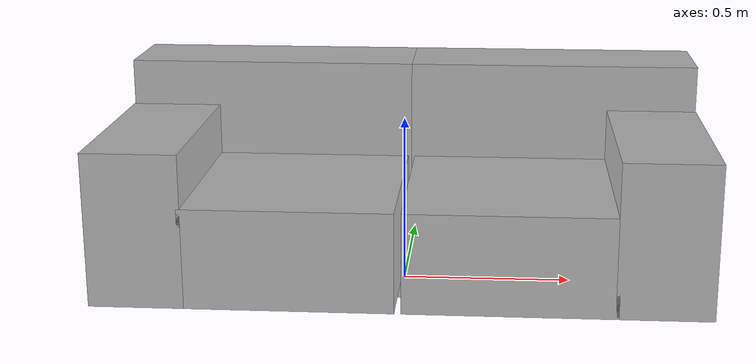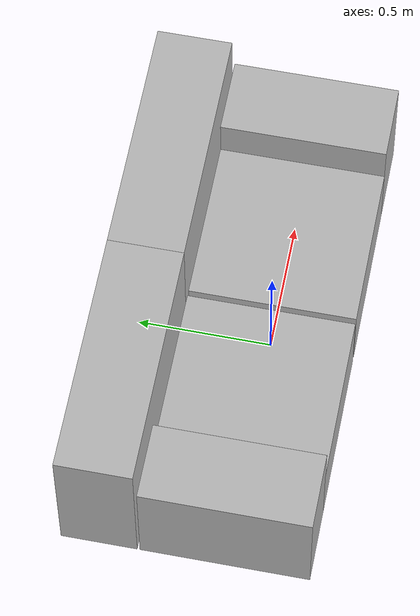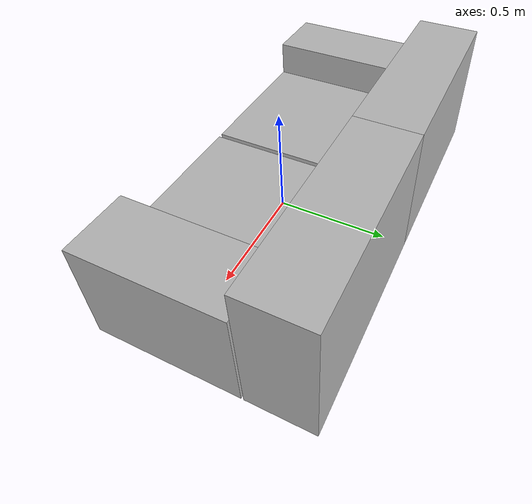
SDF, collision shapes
<?xml version='1.0'?>
<sdf version='1.6'>
  <model name='couch_1'>
    <link name='dummy_link'>
      <pose frame=''>0 0 0 0 -0 0</pose>
      <inertial>
        <pose frame=''>-0 0.131429 0.194286 0 -0 0</pose>
        <mass>35</mass>
        <inertia>
          <ixx>1.84429</ixx>
          <ixy>-5.8366e-17</ixy>
          <ixz>-8.62802e-17</ixz>
          <iyy>9.15786</iyy>
          <iyz>-0.486286</iyz>
          <izz>10.3364</izz>
        </inertia>
      </inertial>
      <self_collide>0</self_collide>
      <kinematic>0</kinematic>
      <velocity_decay/>
      <visual name='dummy_link_visual'>
        <pose frame=''>0 0 0 0 -0 0</pose>
        <geometry>
          <box>
            <size>0.01 0.01 0.01</size>
          </box>
        </geometry>
        <cast_shadows>1</cast_shadows>
        <transparency>0</transparency>
      </visual>
      <visual name='dummy_link_fixed_joint_lump__left_couch_back_visual_1'>
        <pose frame=''>-0.45 0.46 0.3 0 -0 0</pose>
        <geometry>
          <mesh>
            <scale>1 1 1</scale>
            <uri>/home/dede/workspaces/lucis/src/cob_simulation/cob_gazebo_objects/Media/materials/textures/couch_back.dae</uri>
          </mesh>
        </geometry>
        <cast_shadows>1</cast_shadows>
        <transparency>0</transparency>
      </visual>
      <visual name='dummy_link_fixed_joint_lump__left_couch_middle_visual_2'>
        <pose frame=''>-0.32 0 0.15 0 -0 0</pose>
        <geometry>
          <mesh>
            <scale>1 1 1</scale>
            <uri>/home/dede/workspaces/lucis/src/cob_simulation/cob_gazebo_objects/Media/materials/textures/couch_middle.dae</uri>
          </mesh>
        </geometry>
        <cast_shadows>1</cast_shadows>
        <transparency>0</transparency>
      </visual>
      <visual name='dummy_link_fixed_joint_lump__left_couch_side_visual_3'>
        <pose frame=''>-0.76 0 0.23 0 -0 0</pose>
        <geometry>
          <mesh>
            <scale>1 1 1</scale>
            <uri>/home/dede/workspaces/lucis/src/cob_simulation/cob_gazebo_objects/Media/materials/textures/couch_left_side.dae</uri>
          </mesh>
        </geometry>
        <cast_shadows>1</cast_shadows>
        <transparency>0</transparency>
      </visual>
      <visual name='dummy_link_fixed_joint_lump__right_couch_middle_visual_5'>
        <pose frame=''>0.32 0 0.15 0 -0 0</pose>
        <geometry>
          <mesh>
            <scale>1 1 1</scale>
            <uri>/home/dede/workspaces/lucis/src/cob_simulation/cob_gazebo_objects/Media/materials/textures/couch_middle.dae</uri>
          </mesh>
        </geometry>
        <cast_shadows>1</cast_shadows>
        <transparency>0</transparency>
      </visual>
      <visual name='dummy_link_fixed_joint_lump__right_couch_back_visual_4'>
        <pose frame=''>0.45 0.46 0.3 0 -0 0</pose>
        <geometry>
          <mesh>
            <scale>1 1 1</scale>
            <uri>/home/dede/workspaces/lucis/src/cob_simulation/cob_gazebo_objects/Media/materials/textures/couch_back.dae</uri>
          </mesh>
        </geometry>
        <cast_shadows>1</cast_shadows>
        <transparency>0</transparency>
      </visual>
      <visual name='dummy_link_fixed_joint_lump__right_couch_side_visual_6'>
        <pose frame=''>0.76 0 0.23 0 -0 0</pose>
        <geometry>
          <mesh>
            <scale>1 1 1</scale>
            <uri>/home/dede/workspaces/lucis/src/cob_simulation/cob_gazebo_objects/Media/materials/textures/couch_right_side.dae</uri>
          </mesh>
        </geometry>
        <cast_shadows>1</cast_shadows>
        <transparency>0</transparency>
      </visual>
      <collision name='dummy_link_fixed_joint_lump__right_couch_side_collision_6'>
        <laser_retro>0</laser_retro>
        <max_contacts>10</max_contacts>
        <pose frame=''>0.76 0 0.23 0 -0 0</pose>
        <geometry>
          <box>
            <size>0.28 0.62 0.46</size>
          </box>
        </geometry>
        <surface>
          <friction>
            <ode>
              <mu>1</mu>
              <mu2>1</mu2>
              <fdir1>0 0 0</fdir1>
              <slip1>0</slip1>
              <slip2>0</slip2>
            </ode>
            <torsional>
              <coefficient>1</coefficient>
              <patch_radius>0</patch_radius>
              <surface_radius>0</surface_radius>
              <use_patch_radius>1</use_patch_radius>
              <ode>
                <slip>0</slip>
              </ode>
            </torsional>
          </friction>
          <bounce>
            <restitution_coefficient>0</restitution_coefficient>
            <threshold>1e+06</threshold>
          </bounce>
          <contact>
            <collide_without_contact>0</collide_without_contact>
            <collide_without_contact_bitmask>1</collide_without_contact_bitmask>
            <collide_bitmask>1</collide_bitmask>
            <ode>
              <soft_cfm>0</soft_cfm>
              <soft_erp>0.2</soft_erp>
              <kp>1e+13</kp>
              <kd>1</kd>
              <max_vel>0.01</max_vel>
              <min_depth>0</min_depth>
            </ode>
            <bullet>
              <split_impulse>1</split_impulse>
              <split_impulse_penetration_threshold>-0.01</split_impulse_penetration_threshold>
              <soft_cfm>0</soft_cfm>
              <soft_erp>0.2</soft_erp>
              <kp>1e+13</kp>
              <kd>1</kd>
            </bullet>
          </contact>
        </surface>
      </collision>
      <collision name='dummy_link_fixed_joint_lump__right_couch_middle_collision_5'>
        <laser_retro>0</laser_retro>
        <max_contacts>10</max_contacts>
        <pose frame=''>0.32 0 0.15 0 -0 0</pose>
        <geometry>
          <box>
            <size>0.62 0.62 0.3</size>
          </box>
        </geometry>
        <surface>
          <friction>
            <ode>
              <mu>1</mu>
              <mu2>1</mu2>
              <fdir1>0 0 0</fdir1>
              <slip1>0</slip1>
              <slip2>0</slip2>
            </ode>
            <torsional>
              <coefficient>1</coefficient>
              <patch_radius>0</patch_radius>
              <surface_radius>0</surface_radius>
              <use_patch_radius>1</use_patch_radius>
              <ode>
                <slip>0</slip>
              </ode>
            </torsional>
          </friction>
          <bounce>
            <restitution_coefficient>0</restitution_coefficient>
            <threshold>1e+06</threshold>
          </bounce>
          <contact>
            <collide_without_contact>0</collide_without_contact>
            <collide_without_contact_bitmask>1</collide_without_contact_bitmask>
            <collide_bitmask>1</collide_bitmask>
            <ode>
              <soft_cfm>0</soft_cfm>
              <soft_erp>0.2</soft_erp>
              <kp>1e+13</kp>
              <kd>1</kd>
              <max_vel>0.01</max_vel>
              <min_depth>0</min_depth>
            </ode>
            <bullet>
              <split_impulse>1</split_impulse>
              <split_impulse_penetration_threshold>-0.01</split_impulse_penetration_threshold>
              <soft_cfm>0</soft_cfm>
              <soft_erp>0.2</soft_erp>
              <kp>1e+13</kp>
              <kd>1</kd>
            </bullet>
          </contact>
        </surface>
      </collision>
      <collision name='dummy_link_fixed_joint_lump__right_couch_back_collision_4'>
        <laser_retro>0</laser_retro>
        <max_contacts>10</max_contacts>
        <pose frame=''>0.45 0.46 0.3 0 -0 0</pose>
        <geometry>
          <box>
            <size>0.9 0.28 0.6</size>
          </box>
        </geometry>
        <surface>
          <friction>
            <ode>
              <mu>1</mu>
              <mu2>1</mu2>
              <fdir1>0 0 0</fdir1>
              <slip1>0</slip1>
              <slip2>0</slip2>
            </ode>
            <torsional>
              <coefficient>1</coefficient>
              <patch_radius>0</patch_radius>
              <surface_radius>0</surface_radius>
              <use_patch_radius>1</use_patch_radius>
              <ode>
                <slip>0</slip>
              </ode>
            </torsional>
          </friction>
          <bounce>
            <restitution_coefficient>0</restitution_coefficient>
            <threshold>1e+06</threshold>
          </bounce>
          <contact>
            <collide_without_contact>0</collide_without_contact>
            <collide_without_contact_bitmask>1</collide_without_contact_bitmask>
            <collide_bitmask>1</collide_bitmask>
            <ode>
              <soft_cfm>0</soft_cfm>
              <soft_erp>0.2</soft_erp>
              <kp>1e+13</kp>
              <kd>1</kd>
              <max_vel>0.01</max_vel>
              <min_depth>0</min_depth>
            </ode>
            <bullet>
              <split_impulse>1</split_impulse>
              <split_impulse_penetration_threshold>-0.01</split_impulse_penetration_threshold>
              <soft_cfm>0</soft_cfm>
              <soft_erp>0.2</soft_erp>
              <kp>1e+13</kp>
              <kd>1</kd>
            </bullet>
          </contact>
        </surface>
      </collision>
      <collision name='dummy_link_fixed_joint_lump__left_couch_back_collision_1'>
        <laser_retro>0</laser_retro>
        <max_contacts>10</max_contacts>
        <pose frame=''>-0.45 0.46 0.3 0 -0 0</pose>
        <geometry>
          <box>
            <size>0.9 0.28 0.6</size>
          </box>
        </geometry>
        <surface>
          <friction>
            <ode>
              <mu>1</mu>
              <mu2>1</mu2>
              <fdir1>0 0 0</fdir1>
              <slip1>0</slip1>
              <slip2>0</slip2>
            </ode>
            <torsional>
              <coefficient>1</coefficient>
              <patch_radius>0</patch_radius>
              <surface_radius>0</surface_radius>
              <use_patch_radius>1</use_patch_radius>
              <ode>
                <slip>0</slip>
              </ode>
            </torsional>
          </friction>
          <bounce>
            <restitution_coefficient>0</restitution_coefficient>
            <threshold>1e+06</threshold>
          </bounce>
          <contact>
            <collide_without_contact>0</collide_without_contact>
            <collide_without_contact_bitmask>1</collide_without_contact_bitmask>
            <collide_bitmask>1</collide_bitmask>
            <ode>
              <soft_cfm>0</soft_cfm>
              <soft_erp>0.2</soft_erp>
              <kp>1e+13</kp>
              <kd>1</kd>
              <max_vel>0.01</max_vel>
              <min_depth>0</min_depth>
            </ode>
            <bullet>
              <split_impulse>1</split_impulse>
              <split_impulse_penetration_threshold>-0.01</split_impulse_penetration_threshold>
              <soft_cfm>0</soft_cfm>
              <soft_erp>0.2</soft_erp>
              <kp>1e+13</kp>
              <kd>1</kd>
            </bullet>
          </contact>
        </surface>
      </collision>
      <collision name='dummy_link_fixed_joint_lump__left_couch_side_collision_3'>
        <laser_retro>0</laser_retro>
        <max_contacts>10</max_contacts>
        <pose frame=''>-0.76 0 0.23 0 -0 0</pose>
        <geometry>
          <box>
            <size>0.28 0.62 0.46</size>
          </box>
        </geometry>
        <surface>
          <friction>
            <ode>
              <mu>1</mu>
              <mu2>1</mu2>
              <fdir1>0 0 0</fdir1>
              <slip1>0</slip1>
              <slip2>0</slip2>
            </ode>
            <torsional>
              <coefficient>1</coefficient>
              <patch_radius>0</patch_radius>
              <surface_radius>0</surface_radius>
              <use_patch_radius>1</use_patch_radius>
              <ode>
                <slip>0</slip>
              </ode>
            </torsional>
          </friction>
          <bounce>
            <restitution_coefficient>0</restitution_coefficient>
            <threshold>1e+06</threshold>
          </bounce>
          <contact>
            <collide_without_contact>0</collide_without_contact>
            <collide_without_contact_bitmask>1</collide_without_contact_bitmask>
            <collide_bitmask>1</collide_bitmask>
            <ode>
              <soft_cfm>0</soft_cfm>
              <soft_erp>0.2</soft_erp>
              <kp>1e+13</kp>
              <kd>1</kd>
              <max_vel>0.01</max_vel>
              <min_depth>0</min_depth>
            </ode>
            <bullet>
              <split_impulse>1</split_impulse>
              <split_impulse_penetration_threshold>-0.01</split_impulse_penetration_threshold>
              <soft_cfm>0</soft_cfm>
              <soft_erp>0.2</soft_erp>
              <kp>1e+13</kp>
              <kd>1</kd>
            </bullet>
          </contact>
        </surface>
      </collision>
      <collision name='dummy_link_fixed_joint_lump__left_couch_middle_collision_2'>
        <laser_retro>0</laser_retro>
        <max_contacts>10</max_contacts>
        <pose frame=''>-0.32 0 0.15 0 -0 0</pose>
        <geometry>
          <box>
            <size>0.62 0.62 0.3</size>
          </box>
        </geometry>
        <surface>
          <friction>
            <ode>
              <mu>1</mu>
              <mu2>1</mu2>
              <fdir1>0 0 0</fdir1>
              <slip1>0</slip1>
              <slip2>0</slip2>
            </ode>
            <torsional>
              <coefficient>1</coefficient>
              <patch_radius>0</patch_radius>
              <surface_radius>0</surface_radius>
              <use_patch_radius>1</use_patch_radius>
              <ode>
                <slip>0</slip>
              </ode>
            </torsional>
          </friction>
          <bounce>
            <restitution_coefficient>0</restitution_coefficient>
            <threshold>1e+06</threshold>
          </bounce>
          <contact>
            <collide_without_contact>0</collide_without_contact>
            <collide_without_contact_bitmask>1</collide_without_contact_bitmask>
            <collide_bitmask>1</collide_bitmask>
            <ode>
              <soft_cfm>0</soft_cfm>
              <soft_erp>0.2</soft_erp>
              <kp>1e+13</kp>
              <kd>1</kd>
              <max_vel>0.01</max_vel>
              <min_depth>0</min_depth>
            </ode>
            <bullet>
              <split_impulse>1</split_impulse>
              <split_impulse_penetration_threshold>-0.01</split_impulse_penetration_threshold>
              <soft_cfm>0</soft_cfm>
              <soft_erp>0.2</soft_erp>
              <kp>1e+13</kp>
              <kd>1</kd>
            </bullet>
          </contact>
        </surface>
      </collision>
      <collision name='dummy_link_collision'>
        <laser_retro>0</laser_retro>
        <max_contacts>10</max_contacts>
        <pose frame=''>0 0 0 0 -0 0</pose>
        <geometry>
          <box>
            <size>0.1 0.1 0.1</size>
          </box>
        </geometry>
        <surface>
          <friction>
            <ode>
              <mu>1</mu>
              <mu2>1</mu2>
              <fdir1>0 0 0</fdir1>
              <slip1>0</slip1>
              <slip2>0</slip2>
            </ode>
            <torsional>
              <coefficient>1</coefficient>
              <patch_radius>0</patch_radius>
              <surface_radius>0</surface_radius>
              <use_patch_radius>1</use_patch_radius>
              <ode>
                <slip>0</slip>
              </ode>
            </torsional>
          </friction>
          <bounce>
            <restitution_coefficient>0</restitution_coefficient>
            <threshold>1e+06</threshold>
          </bounce>
          <contact>
            <collide_without_contact>0</collide_without_contact>
            <collide_without_contact_bitmask>1</collide_without_contact_bitmask>
            <collide_bitmask>1</collide_bitmask>
            <ode>
              <soft_cfm>0</soft_cfm>
              <soft_erp>0.2</soft_erp>
              <kp>1e+13</kp>
              <kd>1</kd>
              <max_vel>0.01</max_vel>
              <min_depth>0</min_depth>
            </ode>
            <bullet>
              <split_impulse>1</split_impulse>
              <split_impulse_penetration_threshold>-0.01</split_impulse_penetration_threshold>
              <soft_cfm>0</soft_cfm>
              <soft_erp>0.2</soft_erp>
              <kp>1e+13</kp>
              <kd>1</kd>
            </bullet>
          </contact>
        </surface>
      </collision>
    </link>
    <static>0</static>
    <allow_auto_disable>1</allow_auto_disable>
  </model>
</sdf>
